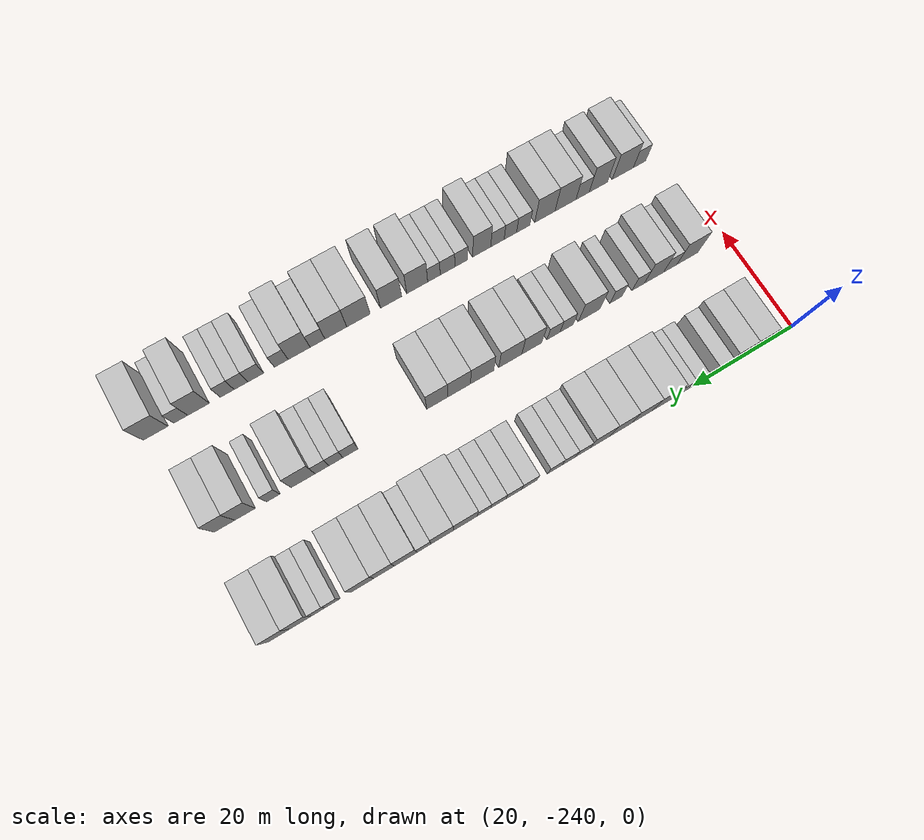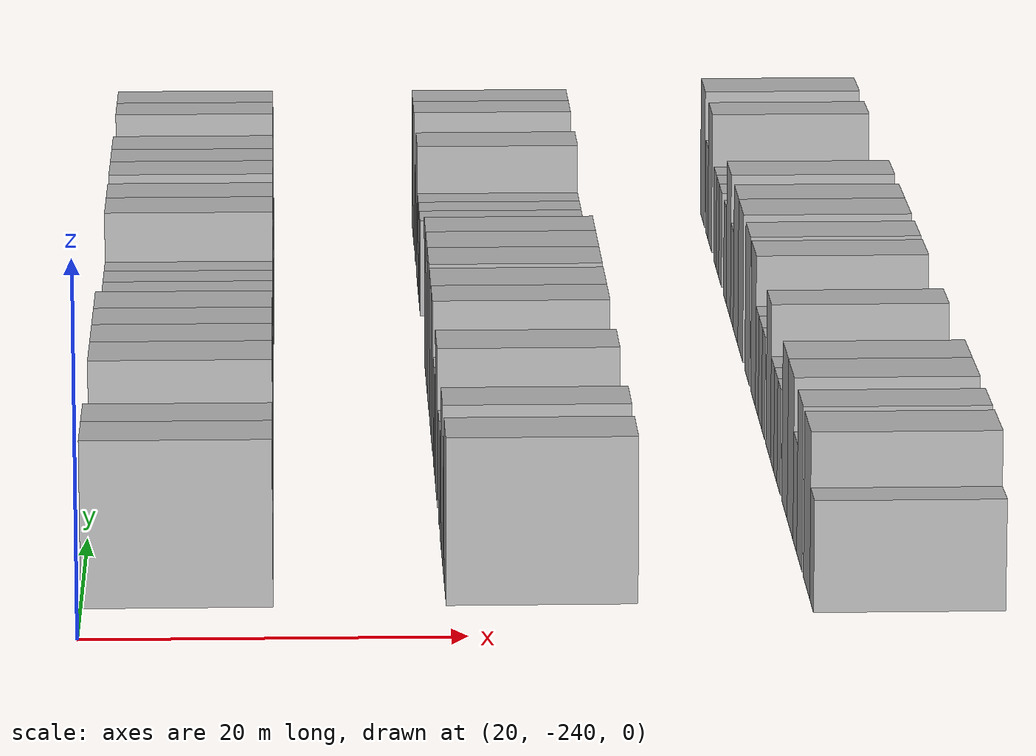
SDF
<sdf version="1.6">
 <world name="default">
  <model name="building_1">
   <static>1</static>
   <pose>25.0000 -231.9561 0 0.000000 0.000000 0.000000</pose>
   <link name="link">
    <pose>0 0 4.50 0 0 0</pose>
    <collision name="collision"><geometry><box><size>10.0000 4.0878 9.0000</size></box></geometry></collision>
    <visual name="visual">
     <cast_shadows>0</cast_shadows>
     <geometry><box><size>10.0000 4.0878 9.0000</size></box></geometry>
     <material>
      <script>
       <uri>model://HANNAS_wall/materials/scripts</uri>
       <uri>model://HANNAS_wall/materials/textures</uri>
       <name>vrc/HANNAS_wall</name>
      </script>
     </material>
    </visual>
   </link>
  </model>
  <model name="building_2">
   <static>1</static>
   <pose>25.0000 -227.9771 0 0.000000 0.000000 0.000000</pose>
   <link name="link">
    <pose>0 0 4.50 0 0 0</pose>
    <collision name="collision"><geometry><box><size>10.0000 3.8702 9.0000</size></box></geometry></collision>
    <visual name="visual">
     <cast_shadows>0</cast_shadows>
     <geometry><box><size>10.0000 3.8702 9.0000</size></box></geometry>
     <material>
      <script>
       <uri>model://HANNAS_wall/materials/scripts</uri>
       <uri>model://HANNAS_wall/materials/textures</uri>
       <name>vrc/HANNAS_wall</name>
      </script>
     </material>
    </visual>
   </link>
  </model>
  <model name="building_3">
   <static>1</static>
   <pose>25.0000 -224.6804 0 0.000000 0.000000 0.000000</pose>
   <link name="link">
    <pose>0 0 3.00 0 0 0</pose>
    <collision name="collision"><geometry><box><size>10.0000 2.7232 6.0000</size></box></geometry></collision>
    <visual name="visual">
     <cast_shadows>0</cast_shadows>
     <geometry><box><size>10.0000 2.7232 6.0000</size></box></geometry>
     <material>
      <script>
       <uri>model://HANNAS_wall/materials/scripts</uri>
       <uri>model://HANNAS_wall/materials/textures</uri>
       <name>vrc/HANNAS_wall</name>
      </script>
     </material>
    </visual>
   </link>
  </model>
  <model name="building_4">
   <static>1</static>
   <pose>25.0000 -220.0909 0 0.000000 0.000000 0.000000</pose>
   <link name="link">
    <pose>0 0 3.00 0 0 0</pose>
    <collision name="collision"><geometry><box><size>10.0000 2.4558 6.0000</size></box></geometry></collision>
    <visual name="visual">
     <cast_shadows>0</cast_shadows>
     <geometry><box><size>10.0000 2.4558 6.0000</size></box></geometry>
     <material>
      <script>
       <uri>model://HANNAS_wall/materials/scripts</uri>
       <uri>model://HANNAS_wall/materials/textures</uri>
       <name>vrc/HANNAS_wall</name>
      </script>
     </material>
    </visual>
   </link>
  </model>
  <model name="building_5">
   <static>1</static>
   <pose>25.0000 -217.5487 0 0.000000 0.000000 0.000000</pose>
   <link name="link">
    <pose>0 0 3.00 0 0 0</pose>
    <collision name="collision"><geometry><box><size>10.0000 2.6286 6.0000</size></box></geometry></collision>
    <visual name="visual">
     <cast_shadows>0</cast_shadows>
     <geometry><box><size>10.0000 2.6286 6.0000</size></box></geometry>
     <material>
      <script>
       <uri>model://HANNAS_wall/materials/scripts</uri>
       <uri>model://HANNAS_wall/materials/textures</uri>
       <name>vrc/HANNAS_wall</name>
      </script>
     </material>
    </visual>
   </link>
  </model>
  <model name="building_6">
   <static>1</static>
   <pose>25.0000 -214.0006 0 0.000000 0.000000 0.000000</pose>
   <link name="link">
    <pose>0 0 4.50 0 0 0</pose>
    <collision name="collision"><geometry><box><size>10.0000 4.4677 9.0000</size></box></geometry></collision>
    <visual name="visual">
     <cast_shadows>0</cast_shadows>
     <geometry><box><size>10.0000 4.4677 9.0000</size></box></geometry>
     <material>
      <script>
       <uri>model://HANNAS_wall/materials/scripts</uri>
       <uri>model://HANNAS_wall/materials/textures</uri>
       <name>vrc/HANNAS_wall</name>
      </script>
     </material>
    </visual>
   </link>
  </model>
  <model name="building_7">
   <static>1</static>
   <pose>25.0000 -209.6781 0 0.000000 0.000000 0.000000</pose>
   <link name="link">
    <pose>0 0 4.50 0 0 0</pose>
    <collision name="collision"><geometry><box><size>10.0000 4.1772 9.0000</size></box></geometry></collision>
    <visual name="visual">
     <cast_shadows>0</cast_shadows>
     <geometry><box><size>10.0000 4.1772 9.0000</size></box></geometry>
     <material>
      <script>
       <uri>model://HANNAS_wall/materials/scripts</uri>
       <uri>model://HANNAS_wall/materials/textures</uri>
       <name>vrc/HANNAS_wall</name>
      </script>
     </material>
    </visual>
   </link>
  </model>
  <model name="building_8">
   <static>1</static>
   <pose>25.0000 -205.5924 0 0.000000 0.000000 0.000000</pose>
   <link name="link">
    <pose>0 0 4.50 0 0 0</pose>
    <collision name="collision"><geometry><box><size>10.0000 3.9943 9.0000</size></box></geometry></collision>
    <visual name="visual">
     <cast_shadows>0</cast_shadows>
     <geometry><box><size>10.0000 3.9943 9.0000</size></box></geometry>
     <material>
      <script>
       <uri>model://HANNAS_wall/materials/scripts</uri>
       <uri>model://HANNAS_wall/materials/textures</uri>
       <name>vrc/HANNAS_wall</name>
      </script>
     </material>
    </visual>
   </link>
  </model>
  <model name="building_9">
   <static>1</static>
   <pose>25.0000 -201.5379 0 0.000000 0.000000 0.000000</pose>
   <link name="link">
    <pose>0 0 4.50 0 0 0</pose>
    <collision name="collision"><geometry><box><size>10.0000 4.1145 9.0000</size></box></geometry></collision>
    <visual name="visual">
     <cast_shadows>0</cast_shadows>
     <geometry><box><size>10.0000 4.1145 9.0000</size></box></geometry>
     <material>
      <script>
       <uri>model://HANNAS_wall/materials/scripts</uri>
       <uri>model://HANNAS_wall/materials/textures</uri>
       <name>vrc/HANNAS_wall</name>
      </script>
     </material>
    </visual>
   </link>
  </model>
  <model name="building_10">
   <static>1</static>
   <pose>25.0000 -198.1714 0 0.000000 0.000000 0.000000</pose>
   <link name="link">
    <pose>0 0 3.00 0 0 0</pose>
    <collision name="collision"><geometry><box><size>10.0000 2.6185 6.0000</size></box></geometry></collision>
    <visual name="visual">
     <cast_shadows>0</cast_shadows>
     <geometry><box><size>10.0000 2.6185 6.0000</size></box></geometry>
     <material>
      <script>
       <uri>model://HANNAS_wall/materials/scripts</uri>
       <uri>model://HANNAS_wall/materials/textures</uri>
       <name>vrc/HANNAS_wall</name>
      </script>
     </material>
    </visual>
   </link>
  </model>
  <model name="building_11">
   <static>1</static>
   <pose>25.0000 -195.5604 0 0.000000 0.000000 0.000000</pose>
   <link name="link">
    <pose>0 0 3.00 0 0 0</pose>
    <collision name="collision"><geometry><box><size>10.0000 2.6036 6.0000</size></box></geometry></collision>
    <visual name="visual">
     <cast_shadows>0</cast_shadows>
     <geometry><box><size>10.0000 2.6036 6.0000</size></box></geometry>
     <material>
      <script>
       <uri>model://HANNAS_wall/materials/scripts</uri>
       <uri>model://HANNAS_wall/materials/textures</uri>
       <name>vrc/HANNAS_wall</name>
      </script>
     </material>
    </visual>
   </link>
  </model>
  <model name="building_12">
   <static>1</static>
   <pose>25.0000 -192.9126 0 0.000000 0.000000 0.000000</pose>
   <link name="link">
    <pose>0 0 3.00 0 0 0</pose>
    <collision name="collision"><geometry><box><size>10.0000 2.6920 6.0000</size></box></geometry></collision>
    <visual name="visual">
     <cast_shadows>0</cast_shadows>
     <geometry><box><size>10.0000 2.6920 6.0000</size></box></geometry>
     <material>
      <script>
       <uri>model://HANNAS_wall/materials/scripts</uri>
       <uri>model://HANNAS_wall/materials/textures</uri>
       <name>vrc/HANNAS_wall</name>
      </script>
     </material>
    </visual>
   </link>
  </model>
  <model name="building_13">
   <static>1</static>
   <pose>25.0000 -188.1085 0 0.000000 0.000000 0.000000</pose>
   <link name="link">
    <pose>0 0 3.00 0 0 0</pose>
    <collision name="collision"><geometry><box><size>10.0000 2.9162 6.0000</size></box></geometry></collision>
    <visual name="visual">
     <cast_shadows>0</cast_shadows>
     <geometry><box><size>10.0000 2.9162 6.0000</size></box></geometry>
     <material>
      <script>
       <uri>model://HANNAS_wall/materials/scripts</uri>
       <uri>model://HANNAS_wall/materials/textures</uri>
       <name>vrc/HANNAS_wall</name>
      </script>
     </material>
    </visual>
   </link>
  </model>
  <model name="building_14">
   <static>1</static>
   <pose>25.0000 -185.1995 0 0.000000 0.000000 0.000000</pose>
   <link name="link">
    <pose>0 0 3.00 0 0 0</pose>
    <collision name="collision"><geometry><box><size>10.0000 2.9018 6.0000</size></box></geometry></collision>
    <visual name="visual">
     <cast_shadows>0</cast_shadows>
     <geometry><box><size>10.0000 2.9018 6.0000</size></box></geometry>
     <material>
      <script>
       <uri>model://HANNAS_wall/materials/scripts</uri>
       <uri>model://HANNAS_wall/materials/textures</uri>
       <name>vrc/HANNAS_wall</name>
      </script>
     </material>
    </visual>
   </link>
  </model>
  <model name="building_15">
   <static>1</static>
   <pose>25.0000 -182.3323 0 0.000000 0.000000 0.000000</pose>
   <link name="link">
    <pose>0 0 3.00 0 0 0</pose>
    <collision name="collision"><geometry><box><size>10.0000 2.8326 6.0000</size></box></geometry></collision>
    <visual name="visual">
     <cast_shadows>0</cast_shadows>
     <geometry><box><size>10.0000 2.8326 6.0000</size></box></geometry>
     <material>
      <script>
       <uri>model://HANNAS_wall/materials/scripts</uri>
       <uri>model://HANNAS_wall/materials/textures</uri>
       <name>vrc/HANNAS_wall</name>
      </script>
     </material>
    </visual>
   </link>
  </model>
  <model name="building_16">
   <static>1</static>
   <pose>25.0000 -179.6947 0 0.000000 0.000000 0.000000</pose>
   <link name="link">
    <pose>0 0 3.00 0 0 0</pose>
    <collision name="collision"><geometry><box><size>10.0000 2.4427 6.0000</size></box></geometry></collision>
    <visual name="visual">
     <cast_shadows>0</cast_shadows>
     <geometry><box><size>10.0000 2.4427 6.0000</size></box></geometry>
     <material>
      <script>
       <uri>model://HANNAS_wall/materials/scripts</uri>
       <uri>model://HANNAS_wall/materials/textures</uri>
       <name>vrc/HANNAS_wall</name>
      </script>
     </material>
    </visual>
   </link>
  </model>
  <model name="building_17">
   <static>1</static>
   <pose>25.0000 -176.2881 0 0.000000 0.000000 0.000000</pose>
   <link name="link">
    <pose>0 0 4.50 0 0 0</pose>
    <collision name="collision"><geometry><box><size>10.0000 4.3705 9.0000</size></box></geometry></collision>
    <visual name="visual">
     <cast_shadows>0</cast_shadows>
     <geometry><box><size>10.0000 4.3705 9.0000</size></box></geometry>
     <material>
      <script>
       <uri>model://HANNAS_wall/materials/scripts</uri>
       <uri>model://HANNAS_wall/materials/textures</uri>
       <name>vrc/HANNAS_wall</name>
      </script>
     </material>
    </visual>
   </link>
  </model>
  <model name="building_18">
   <static>1</static>
   <pose>25.0000 -172.0715 0 0.000000 0.000000 0.000000</pose>
   <link name="link">
    <pose>0 0 4.50 0 0 0</pose>
    <collision name="collision"><geometry><box><size>10.0000 4.0628 9.0000</size></box></geometry></collision>
    <visual name="visual">
     <cast_shadows>0</cast_shadows>
     <geometry><box><size>10.0000 4.0628 9.0000</size></box></geometry>
     <material>
      <script>
       <uri>model://HANNAS_wall/materials/scripts</uri>
       <uri>model://HANNAS_wall/materials/textures</uri>
       <name>vrc/HANNAS_wall</name>
      </script>
     </material>
    </visual>
   </link>
  </model>
  <model name="building_19">
   <static>1</static>
   <pose>25.0000 -168.7544 0 0.000000 0.000000 0.000000</pose>
   <link name="link">
    <pose>0 0 3.00 0 0 0</pose>
    <collision name="collision"><geometry><box><size>10.0000 2.5712 6.0000</size></box></geometry></collision>
    <visual name="visual">
     <cast_shadows>0</cast_shadows>
     <geometry><box><size>10.0000 2.5712 6.0000</size></box></geometry>
     <material>
      <script>
       <uri>model://HANNAS_wall/materials/scripts</uri>
       <uri>model://HANNAS_wall/materials/textures</uri>
       <name>vrc/HANNAS_wall</name>
      </script>
     </material>
    </visual>
   </link>
  </model>
  <model name="building_20">
   <static>1</static>
   <pose>25.0000 -165.4810 0 0.000000 0.000000 0.000000</pose>
   <link name="link">
    <pose>0 0 4.50 0 0 0</pose>
    <collision name="collision"><geometry><box><size>10.0000 3.9756 9.0000</size></box></geometry></collision>
    <visual name="visual">
     <cast_shadows>0</cast_shadows>
     <geometry><box><size>10.0000 3.9756 9.0000</size></box></geometry>
     <material>
      <script>
       <uri>model://HANNAS_wall/materials/scripts</uri>
       <uri>model://HANNAS_wall/materials/textures</uri>
       <name>vrc/HANNAS_wall</name>
      </script>
     </material>
    </visual>
   </link>
  </model>
  <model name="building_21">
   <static>1</static>
   <pose>25.0000 -161.6683 0 0.000000 0.000000 0.000000</pose>
   <link name="link">
    <pose>0 0 4.50 0 0 0</pose>
    <collision name="collision"><geometry><box><size>10.0000 3.6498 9.0000</size></box></geometry></collision>
    <visual name="visual">
     <cast_shadows>0</cast_shadows>
     <geometry><box><size>10.0000 3.6498 9.0000</size></box></geometry>
     <material>
      <script>
       <uri>model://HANNAS_wall/materials/scripts</uri>
       <uri>model://HANNAS_wall/materials/textures</uri>
       <name>vrc/HANNAS_wall</name>
      </script>
     </material>
    </visual>
   </link>
  </model>
  <model name="building_22">
   <static>1</static>
   <pose>25.0000 -157.8268 0 0.000000 0.000000 0.000000</pose>
   <link name="link">
    <pose>0 0 4.50 0 0 0</pose>
    <collision name="collision"><geometry><box><size>10.0000 4.0331 9.0000</size></box></geometry></collision>
    <visual name="visual">
     <cast_shadows>0</cast_shadows>
     <geometry><box><size>10.0000 4.0331 9.0000</size></box></geometry>
     <material>
      <script>
       <uri>model://HANNAS_wall/materials/scripts</uri>
       <uri>model://HANNAS_wall/materials/textures</uri>
       <name>vrc/HANNAS_wall</name>
      </script>
     </material>
    </visual>
   </link>
  </model>
  <model name="building_23">
   <static>1</static>
   <pose>25.0000 -152.5795 0 0.000000 0.000000 0.000000</pose>
   <link name="link">
    <pose>0 0 3.00 0 0 0</pose>
    <collision name="collision"><geometry><box><size>10.0000 2.4616 6.0000</size></box></geometry></collision>
    <visual name="visual">
     <cast_shadows>0</cast_shadows>
     <geometry><box><size>10.0000 2.4616 6.0000</size></box></geometry>
     <material>
      <script>
       <uri>model://HANNAS_wall/materials/scripts</uri>
       <uri>model://HANNAS_wall/materials/textures</uri>
       <name>vrc/HANNAS_wall</name>
      </script>
     </material>
    </visual>
   </link>
  </model>
  <model name="building_24">
   <static>1</static>
   <pose>25.0000 -150.1322 0 0.000000 0.000000 0.000000</pose>
   <link name="link">
    <pose>0 0 3.00 0 0 0</pose>
    <collision name="collision"><geometry><box><size>10.0000 2.4331 6.0000</size></box></geometry></collision>
    <visual name="visual">
     <cast_shadows>0</cast_shadows>
     <geometry><box><size>10.0000 2.4331 6.0000</size></box></geometry>
     <material>
      <script>
       <uri>model://HANNAS_wall/materials/scripts</uri>
       <uri>model://HANNAS_wall/materials/textures</uri>
       <name>vrc/HANNAS_wall</name>
      </script>
     </material>
    </visual>
   </link>
  </model>
  <model name="building_25">
   <static>1</static>
   <pose>25.0000 -147.0416 0 0.000000 0.000000 0.000000</pose>
   <link name="link">
    <pose>0 0 4.50 0 0 0</pose>
    <collision name="collision"><geometry><box><size>10.0000 3.7482 9.0000</size></box></geometry></collision>
    <visual name="visual">
     <cast_shadows>0</cast_shadows>
     <geometry><box><size>10.0000 3.7482 9.0000</size></box></geometry>
     <material>
      <script>
       <uri>model://HANNAS_wall/materials/scripts</uri>
       <uri>model://HANNAS_wall/materials/textures</uri>
       <name>vrc/HANNAS_wall</name>
      </script>
     </material>
    </visual>
   </link>
  </model>
  <model name="building_26">
   <static>1</static>
   <pose>25.0000 -143.2613 0 0.000000 0.000000 0.000000</pose>
   <link name="link">
    <pose>0 0 4.50 0 0 0</pose>
    <collision name="collision"><geometry><box><size>10.0000 3.8124 9.0000</size></box></geometry></collision>
    <visual name="visual">
     <cast_shadows>0</cast_shadows>
     <geometry><box><size>10.0000 3.8124 9.0000</size></box></geometry>
     <material>
      <script>
       <uri>model://HANNAS_wall/materials/scripts</uri>
       <uri>model://HANNAS_wall/materials/textures</uri>
       <name>vrc/HANNAS_wall</name>
      </script>
     </material>
    </visual>
   </link>
  </model>
  <model name="building_125">
   <static>1</static>
   <pose>44.0000 -231.8145 0 0.000000 0.000000 0.000000</pose>
   <link name="link">
    <pose>0 0 4.50 0 0 0</pose>
    <collision name="collision"><geometry><box><size>10.0000 4.3710 9.0000</size></box></geometry></collision>
    <visual name="visual">
     <cast_shadows>0</cast_shadows>
     <geometry><box><size>10.0000 4.3710 9.0000</size></box></geometry>
     <material>
      <script>
       <uri>model://HANNAS_wall/materials/scripts</uri>
       <uri>model://HANNAS_wall/materials/textures</uri>
       <name>vrc/HANNAS_wall</name>
      </script>
     </material>
    </visual>
   </link>
  </model>
  <model name="building_126">
   <static>1</static>
   <pose>44.0000 -228.2706 0 0.000000 0.000000 0.000000</pose>
   <link name="link">
    <pose>0 0 3.00 0 0 0</pose>
    <collision name="collision"><geometry><box><size>10.0000 2.7167 6.0000</size></box></geometry></collision>
    <visual name="visual">
     <cast_shadows>0</cast_shadows>
     <geometry><box><size>10.0000 2.7167 6.0000</size></box></geometry>
     <material>
      <script>
       <uri>model://HANNAS_wall/materials/scripts</uri>
       <uri>model://HANNAS_wall/materials/textures</uri>
       <name>vrc/HANNAS_wall</name>
      </script>
     </material>
    </visual>
   </link>
  </model>
  <model name="building_127">
   <static>1</static>
   <pose>44.0000 -224.9423 0 0.000000 0.000000 0.000000</pose>
   <link name="link">
    <pose>0 0 4.50 0 0 0</pose>
    <collision name="collision"><geometry><box><size>10.0000 3.9399 9.0000</size></box></geometry></collision>
    <visual name="visual">
     <cast_shadows>0</cast_shadows>
     <geometry><box><size>10.0000 3.9399 9.0000</size></box></geometry>
     <material>
      <script>
       <uri>model://HANNAS_wall/materials/scripts</uri>
       <uri>model://HANNAS_wall/materials/textures</uri>
       <name>vrc/HANNAS_wall</name>
      </script>
     </material>
    </visual>
   </link>
  </model>
  <model name="building_128">
   <static>1</static>
   <pose>44.0000 -221.7104 0 0.000000 0.000000 0.000000</pose>
   <link name="link">
    <pose>0 0 3.00 0 0 0</pose>
    <collision name="collision"><geometry><box><size>10.0000 2.5241 6.0000</size></box></geometry></collision>
    <visual name="visual">
     <cast_shadows>0</cast_shadows>
     <geometry><box><size>10.0000 2.5241 6.0000</size></box></geometry>
     <material>
      <script>
       <uri>model://HANNAS_wall/materials/scripts</uri>
       <uri>model://HANNAS_wall/materials/textures</uri>
       <name>vrc/HANNAS_wall</name>
      </script>
     </material>
    </visual>
   </link>
  </model>
  <model name="building_129">
   <static>1</static>
   <pose>44.0000 -217.2175 0 0.000000 0.000000 0.000000</pose>
   <link name="link">
    <pose>0 0 3.00 0 0 0</pose>
    <collision name="collision"><geometry><box><size>10.0000 2.4616 6.0000</size></box></geometry></collision>
    <visual name="visual">
     <cast_shadows>0</cast_shadows>
     <geometry><box><size>10.0000 2.4616 6.0000</size></box></geometry>
     <material>
      <script>
       <uri>model://HANNAS_wall/materials/scripts</uri>
       <uri>model://HANNAS_wall/materials/textures</uri>
       <name>vrc/HANNAS_wall</name>
      </script>
     </material>
    </visual>
   </link>
  </model>
  <model name="building_130">
   <static>1</static>
   <pose>44.0000 -211.8104 0 0.000000 0.000000 0.000000</pose>
   <link name="link">
    <pose>0 0 4.50 0 0 0</pose>
    <collision name="collision"><geometry><box><size>10.0000 4.3525 9.0000</size></box></geometry></collision>
    <visual name="visual">
     <cast_shadows>0</cast_shadows>
     <geometry><box><size>10.0000 4.3525 9.0000</size></box></geometry>
     <material>
      <script>
       <uri>model://HANNAS_wall/materials/scripts</uri>
       <uri>model://HANNAS_wall/materials/textures</uri>
       <name>vrc/HANNAS_wall</name>
      </script>
     </material>
    </visual>
   </link>
  </model>
  <model name="building_131">
   <static>1</static>
   <pose>44.0000 -207.3325 0 0.000000 0.000000 0.000000</pose>
   <link name="link">
    <pose>0 0 3.00 0 0 0</pose>
    <collision name="collision"><geometry><box><size>10.0000 2.6033 6.0000</size></box></geometry></collision>
    <visual name="visual">
     <cast_shadows>0</cast_shadows>
     <geometry><box><size>10.0000 2.6033 6.0000</size></box></geometry>
     <material>
      <script>
       <uri>model://HANNAS_wall/materials/scripts</uri>
       <uri>model://HANNAS_wall/materials/textures</uri>
       <name>vrc/HANNAS_wall</name>
      </script>
     </material>
    </visual>
   </link>
  </model>
  <model name="building_132">
   <static>1</static>
   <pose>44.0000 -204.7227 0 0.000000 0.000000 0.000000</pose>
   <link name="link">
    <pose>0 0 3.00 0 0 0</pose>
    <collision name="collision"><geometry><box><size>10.0000 2.6163 6.0000</size></box></geometry></collision>
    <visual name="visual">
     <cast_shadows>0</cast_shadows>
     <geometry><box><size>10.0000 2.6163 6.0000</size></box></geometry>
     <material>
      <script>
       <uri>model://HANNAS_wall/materials/scripts</uri>
       <uri>model://HANNAS_wall/materials/textures</uri>
       <name>vrc/HANNAS_wall</name>
      </script>
     </material>
    </visual>
   </link>
  </model>
  <model name="building_133">
   <static>1</static>
   <pose>44.0000 -200.4511 0 0.000000 0.000000 0.000000</pose>
   <link name="link">
    <pose>0 0 4.50 0 0 0</pose>
    <collision name="collision"><geometry><box><size>10.0000 3.9269 9.0000</size></box></geometry></collision>
    <visual name="visual">
     <cast_shadows>0</cast_shadows>
     <geometry><box><size>10.0000 3.9269 9.0000</size></box></geometry>
     <material>
      <script>
       <uri>model://HANNAS_wall/materials/scripts</uri>
       <uri>model://HANNAS_wall/materials/textures</uri>
       <name>vrc/HANNAS_wall</name>
      </script>
     </material>
    </visual>
   </link>
  </model>
  <model name="building_134">
   <static>1</static>
   <pose>44.0000 -196.2505 0 0.000000 0.000000 0.000000</pose>
   <link name="link">
    <pose>0 0 4.50 0 0 0</pose>
    <collision name="collision"><geometry><box><size>10.0000 4.4743 9.0000</size></box></geometry></collision>
    <visual name="visual">
     <cast_shadows>0</cast_shadows>
     <geometry><box><size>10.0000 4.4743 9.0000</size></box></geometry>
     <material>
      <script>
       <uri>model://HANNAS_wall/materials/scripts</uri>
       <uri>model://HANNAS_wall/materials/textures</uri>
       <name>vrc/HANNAS_wall</name>
      </script>
     </material>
    </visual>
   </link>
  </model>
  <model name="building_135">
   <static>1</static>
   <pose>44.0000 -190.7830 0 0.000000 0.000000 0.000000</pose>
   <link name="link">
    <pose>0 0 4.50 0 0 0</pose>
    <collision name="collision"><geometry><box><size>10.0000 4.4607 9.0000</size></box></geometry></collision>
    <visual name="visual">
     <cast_shadows>0</cast_shadows>
     <geometry><box><size>10.0000 4.4607 9.0000</size></box></geometry>
     <material>
      <script>
       <uri>model://HANNAS_wall/materials/scripts</uri>
       <uri>model://HANNAS_wall/materials/textures</uri>
       <name>vrc/HANNAS_wall</name>
      </script>
     </material>
    </visual>
   </link>
  </model>
  <model name="building_136">
   <static>1</static>
   <pose>44.0000 -186.4019 0 0.000000 0.000000 0.000000</pose>
   <link name="link">
    <pose>0 0 4.50 0 0 0</pose>
    <collision name="collision"><geometry><box><size>10.0000 4.3014 9.0000</size></box></geometry></collision>
    <visual name="visual">
     <cast_shadows>0</cast_shadows>
     <geometry><box><size>10.0000 4.3014 9.0000</size></box></geometry>
     <material>
      <script>
       <uri>model://HANNAS_wall/materials/scripts</uri>
       <uri>model://HANNAS_wall/materials/textures</uri>
       <name>vrc/HANNAS_wall</name>
      </script>
     </material>
    </visual>
   </link>
  </model>
  <model name="building_137">
   <static>1</static>
   <pose>44.0000 -182.2504 0 0.000000 0.000000 0.000000</pose>
   <link name="link">
    <pose>0 0 4.50 0 0 0</pose>
    <collision name="collision"><geometry><box><size>10.0000 4.0015 9.0000</size></box></geometry></collision>
    <visual name="visual">
     <cast_shadows>0</cast_shadows>
     <geometry><box><size>10.0000 4.0015 9.0000</size></box></geometry>
     <material>
      <script>
       <uri>model://HANNAS_wall/materials/scripts</uri>
       <uri>model://HANNAS_wall/materials/textures</uri>
       <name>vrc/HANNAS_wall</name>
      </script>
     </material>
    </visual>
   </link>
  </model>
  <model name="building_138">
   <static>1</static>
   <pose>44.0000 -166.0498 0 0.000000 0.000000 0.000000</pose>
   <link name="link">
    <pose>0 0 3.00 0 0 0</pose>
    <collision name="collision"><geometry><box><size>10.0000 2.7999 6.0000</size></box></geometry></collision>
    <visual name="visual">
     <cast_shadows>0</cast_shadows>
     <geometry><box><size>10.0000 2.7999 6.0000</size></box></geometry>
     <material>
      <script>
       <uri>model://HANNAS_wall/materials/scripts</uri>
       <uri>model://HANNAS_wall/materials/textures</uri>
       <name>vrc/HANNAS_wall</name>
      </script>
     </material>
    </visual>
   </link>
  </model>
  <model name="building_139">
   <static>1</static>
   <pose>44.0000 -163.3562 0 0.000000 0.000000 0.000000</pose>
   <link name="link">
    <pose>0 0 3.00 0 0 0</pose>
    <collision name="collision"><geometry><box><size>10.0000 2.5873 6.0000</size></box></geometry></collision>
    <visual name="visual">
     <cast_shadows>0</cast_shadows>
     <geometry><box><size>10.0000 2.5873 6.0000</size></box></geometry>
     <material>
      <script>
       <uri>model://HANNAS_wall/materials/scripts</uri>
       <uri>model://HANNAS_wall/materials/textures</uri>
       <name>vrc/HANNAS_wall</name>
      </script>
     </material>
    </visual>
   </link>
  </model>
  <model name="building_140">
   <static>1</static>
   <pose>44.0000 -160.8073 0 0.000000 0.000000 0.000000</pose>
   <link name="link">
    <pose>0 0 3.00 0 0 0</pose>
    <collision name="collision"><geometry><box><size>10.0000 2.5106 6.0000</size></box></geometry></collision>
    <visual name="visual">
     <cast_shadows>0</cast_shadows>
     <geometry><box><size>10.0000 2.5106 6.0000</size></box></geometry>
     <material>
      <script>
       <uri>model://HANNAS_wall/materials/scripts</uri>
       <uri>model://HANNAS_wall/materials/textures</uri>
       <name>vrc/HANNAS_wall</name>
      </script>
     </material>
    </visual>
   </link>
  </model>
  <model name="building_141">
   <static>1</static>
   <pose>44.0000 -157.4000 0 0.000000 0.000000 0.000000</pose>
   <link name="link">
    <pose>0 0 4.50 0 0 0</pose>
    <collision name="collision"><geometry><box><size>10.0000 4.3040 9.0000</size></box></geometry></collision>
    <visual name="visual">
     <cast_shadows>0</cast_shadows>
     <geometry><box><size>10.0000 4.3040 9.0000</size></box></geometry>
     <material>
      <script>
       <uri>model://HANNAS_wall/materials/scripts</uri>
       <uri>model://HANNAS_wall/materials/textures</uri>
       <name>vrc/HANNAS_wall</name>
      </script>
     </material>
    </visual>
   </link>
  </model>
  <model name="building_142">
   <static>1</static>
   <pose>44.0000 -152.0445 0 0.000000 0.000000 0.000000</pose>
   <link name="link">
    <pose>0 0 3.00 0 0 0</pose>
    <collision name="collision"><geometry><box><size>10.0000 2.4071 6.0000</size></box></geometry></collision>
    <visual name="visual">
     <cast_shadows>0</cast_shadows>
     <geometry><box><size>10.0000 2.4071 6.0000</size></box></geometry>
     <material>
      <script>
       <uri>model://HANNAS_wall/materials/scripts</uri>
       <uri>model://HANNAS_wall/materials/textures</uri>
       <name>vrc/HANNAS_wall</name>
      </script>
     </material>
    </visual>
   </link>
  </model>
  <model name="building_143">
   <static>1</static>
   <pose>44.0000 -147.0224 0 0.000000 0.000000 0.000000</pose>
   <link name="link">
    <pose>0 0 4.50 0 0 0</pose>
    <collision name="collision"><geometry><box><size>10.0000 3.6371 9.0000</size></box></geometry></collision>
    <visual name="visual">
     <cast_shadows>0</cast_shadows>
     <geometry><box><size>10.0000 3.6371 9.0000</size></box></geometry>
     <material>
      <script>
       <uri>model://HANNAS_wall/materials/scripts</uri>
       <uri>model://HANNAS_wall/materials/textures</uri>
       <name>vrc/HANNAS_wall</name>
      </script>
     </material>
    </visual>
   </link>
  </model>
  <model name="building_144">
   <static>1</static>
   <pose>44.0000 -143.3822 0 0.000000 0.000000 0.000000</pose>
   <link name="link">
    <pose>0 0 4.50 0 0 0</pose>
    <collision name="collision"><geometry><box><size>10.0000 3.6432 9.0000</size></box></geometry></collision>
    <visual name="visual">
     <cast_shadows>0</cast_shadows>
     <geometry><box><size>10.0000 3.6432 9.0000</size></box></geometry>
     <material>
      <script>
       <uri>model://HANNAS_wall/materials/scripts</uri>
       <uri>model://HANNAS_wall/materials/textures</uri>
       <name>vrc/HANNAS_wall</name>
      </script>
     </material>
    </visual>
   </link>
  </model>
  <model name="building_244">
   <static>1</static>
   <pose>63.0000 -234.6944 0 0.000000 0.000000 0.000000</pose>
   <link name="link">
    <pose>0 0 3.00 0 0 0</pose>
    <collision name="collision"><geometry><box><size>10.0000 2.6112 6.0000</size></box></geometry></collision>
    <visual name="visual">
     <cast_shadows>0</cast_shadows>
     <geometry><box><size>10.0000 2.6112 6.0000</size></box></geometry>
     <material>
      <script>
       <uri>model://HANNAS_wall/materials/scripts</uri>
       <uri>model://HANNAS_wall/materials/textures</uri>
       <name>vrc/HANNAS_wall</name>
      </script>
     </material>
    </visual>
   </link>
  </model>
  <model name="building_245">
   <static>1</static>
   <pose>63.0000 -231.1618 0 0.000000 0.000000 0.000000</pose>
   <link name="link">
    <pose>0 0 4.50 0 0 0</pose>
    <collision name="collision"><geometry><box><size>10.0000 4.4539 9.0000</size></box></geometry></collision>
    <visual name="visual">
     <cast_shadows>0</cast_shadows>
     <geometry><box><size>10.0000 4.4539 9.0000</size></box></geometry>
     <material>
      <script>
       <uri>model://HANNAS_wall/materials/scripts</uri>
       <uri>model://HANNAS_wall/materials/textures</uri>
       <name>vrc/HANNAS_wall</name>
      </script>
     </material>
    </visual>
   </link>
  </model>
  <model name="building_246">
   <static>1</static>
   <pose>63.0000 -226.0421 0 0.000000 0.000000 0.000000</pose>
   <link name="link">
    <pose>0 0 4.50 0 0 0</pose>
    <collision name="collision"><geometry><box><size>10.0000 3.7856 9.0000</size></box></geometry></collision>
    <visual name="visual">
     <cast_shadows>0</cast_shadows>
     <geometry><box><size>10.0000 3.7856 9.0000</size></box></geometry>
     <material>
      <script>
       <uri>model://HANNAS_wall/materials/scripts</uri>
       <uri>model://HANNAS_wall/materials/textures</uri>
       <name>vrc/HANNAS_wall</name>
      </script>
     </material>
    </visual>
   </link>
  </model>
  <model name="building_247">
   <static>1</static>
   <pose>63.0000 -222.7605 0 0.000000 0.000000 0.000000</pose>
   <link name="link">
    <pose>0 0 3.00 0 0 0</pose>
    <collision name="collision"><geometry><box><size>10.0000 2.7776 6.0000</size></box></geometry></collision>
    <visual name="visual">
     <cast_shadows>0</cast_shadows>
     <geometry><box><size>10.0000 2.7776 6.0000</size></box></geometry>
     <material>
      <script>
       <uri>model://HANNAS_wall/materials/scripts</uri>
       <uri>model://HANNAS_wall/materials/textures</uri>
       <name>vrc/HANNAS_wall</name>
      </script>
     </material>
    </visual>
   </link>
  </model>
  <model name="building_248">
   <static>1</static>
   <pose>63.0000 -219.2134 0 0.000000 0.000000 0.000000</pose>
   <link name="link">
    <pose>0 0 4.50 0 0 0</pose>
    <collision name="collision"><geometry><box><size>10.0000 4.3166 9.0000</size></box></geometry></collision>
    <visual name="visual">
     <cast_shadows>0</cast_shadows>
     <geometry><box><size>10.0000 4.3166 9.0000</size></box></geometry>
     <material>
      <script>
       <uri>model://HANNAS_wall/materials/scripts</uri>
       <uri>model://HANNAS_wall/materials/textures</uri>
       <name>vrc/HANNAS_wall</name>
      </script>
     </material>
    </visual>
   </link>
  </model>
  <model name="building_249">
   <static>1</static>
   <pose>63.0000 -214.9714 0 0.000000 0.000000 0.000000</pose>
   <link name="link">
    <pose>0 0 4.50 0 0 0</pose>
    <collision name="collision"><geometry><box><size>10.0000 4.1673 9.0000</size></box></geometry></collision>
    <visual name="visual">
     <cast_shadows>0</cast_shadows>
     <geometry><box><size>10.0000 4.1673 9.0000</size></box></geometry>
     <material>
      <script>
       <uri>model://HANNAS_wall/materials/scripts</uri>
       <uri>model://HANNAS_wall/materials/textures</uri>
       <name>vrc/HANNAS_wall</name>
      </script>
     </material>
    </visual>
   </link>
  </model>
  <model name="building_250">
   <static>1</static>
   <pose>63.0000 -210.5334 0 0.000000 0.000000 0.000000</pose>
   <link name="link">
    <pose>0 0 3.00 0 0 0</pose>
    <collision name="collision"><geometry><box><size>10.0000 2.7087 6.0000</size></box></geometry></collision>
    <visual name="visual">
     <cast_shadows>0</cast_shadows>
     <geometry><box><size>10.0000 2.7087 6.0000</size></box></geometry>
     <material>
      <script>
       <uri>model://HANNAS_wall/materials/scripts</uri>
       <uri>model://HANNAS_wall/materials/textures</uri>
       <name>vrc/HANNAS_wall</name>
      </script>
     </material>
    </visual>
   </link>
  </model>
  <model name="building_251">
   <static>1</static>
   <pose>63.0000 -207.9214 0 0.000000 0.000000 0.000000</pose>
   <link name="link">
    <pose>0 0 3.00 0 0 0</pose>
    <collision name="collision"><geometry><box><size>10.0000 2.5152 6.0000</size></box></geometry></collision>
    <visual name="visual">
     <cast_shadows>0</cast_shadows>
     <geometry><box><size>10.0000 2.5152 6.0000</size></box></geometry>
     <material>
      <script>
       <uri>model://HANNAS_wall/materials/scripts</uri>
       <uri>model://HANNAS_wall/materials/textures</uri>
       <name>vrc/HANNAS_wall</name>
      </script>
     </material>
    </visual>
   </link>
  </model>
  <model name="building_252">
   <static>1</static>
   <pose>63.0000 -205.3107 0 0.000000 0.000000 0.000000</pose>
   <link name="link">
    <pose>0 0 3.00 0 0 0</pose>
    <collision name="collision"><geometry><box><size>10.0000 2.7062 6.0000</size></box></geometry></collision>
    <visual name="visual">
     <cast_shadows>0</cast_shadows>
     <geometry><box><size>10.0000 2.7062 6.0000</size></box></geometry>
     <material>
      <script>
       <uri>model://HANNAS_wall/materials/scripts</uri>
       <uri>model://HANNAS_wall/materials/textures</uri>
       <name>vrc/HANNAS_wall</name>
      </script>
     </material>
    </visual>
   </link>
  </model>
  <model name="building_253">
   <static>1</static>
   <pose>63.0000 -202.1448 0 0.000000 0.000000 0.000000</pose>
   <link name="link">
    <pose>0 0 4.50 0 0 0</pose>
    <collision name="collision"><geometry><box><size>10.0000 3.6257 9.0000</size></box></geometry></collision>
    <visual name="visual">
     <cast_shadows>0</cast_shadows>
     <geometry><box><size>10.0000 3.6257 9.0000</size></box></geometry>
     <material>
      <script>
       <uri>model://HANNAS_wall/materials/scripts</uri>
       <uri>model://HANNAS_wall/materials/textures</uri>
       <name>vrc/HANNAS_wall</name>
      </script>
     </material>
    </visual>
   </link>
  </model>
  <model name="building_254">
   <static>1</static>
   <pose>63.0000 -198.0556 0 0.000000 0.000000 0.000000</pose>
   <link name="link">
    <pose>0 0 3.00 0 0 0</pose>
    <collision name="collision"><geometry><box><size>10.0000 2.5526 6.0000</size></box></geometry></collision>
    <visual name="visual">
     <cast_shadows>0</cast_shadows>
     <geometry><box><size>10.0000 2.5526 6.0000</size></box></geometry>
     <material>
      <script>
       <uri>model://HANNAS_wall/materials/scripts</uri>
       <uri>model://HANNAS_wall/materials/textures</uri>
       <name>vrc/HANNAS_wall</name>
      </script>
     </material>
    </visual>
   </link>
  </model>
  <model name="building_255">
   <static>1</static>
   <pose>63.0000 -195.3465 0 0.000000 0.000000 0.000000</pose>
   <link name="link">
    <pose>0 0 3.00 0 0 0</pose>
    <collision name="collision"><geometry><box><size>10.0000 2.8656 6.0000</size></box></geometry></collision>
    <visual name="visual">
     <cast_shadows>0</cast_shadows>
     <geometry><box><size>10.0000 2.8656 6.0000</size></box></geometry>
     <material>
      <script>
       <uri>model://HANNAS_wall/materials/scripts</uri>
       <uri>model://HANNAS_wall/materials/textures</uri>
       <name>vrc/HANNAS_wall</name>
      </script>
     </material>
    </visual>
   </link>
  </model>
  <model name="building_256">
   <static>1</static>
   <pose>63.0000 -192.6785 0 0.000000 0.000000 0.000000</pose>
   <link name="link">
    <pose>0 0 3.00 0 0 0</pose>
    <collision name="collision"><geometry><box><size>10.0000 2.4705 6.0000</size></box></geometry></collision>
    <visual name="visual">
     <cast_shadows>0</cast_shadows>
     <geometry><box><size>10.0000 2.4705 6.0000</size></box></geometry>
     <material>
      <script>
       <uri>model://HANNAS_wall/materials/scripts</uri>
       <uri>model://HANNAS_wall/materials/textures</uri>
       <name>vrc/HANNAS_wall</name>
      </script>
     </material>
    </visual>
   </link>
  </model>
  <model name="building_257">
   <static>1</static>
   <pose>63.0000 -189.4012 0 0.000000 0.000000 0.000000</pose>
   <link name="link">
    <pose>0 0 4.50 0 0 0</pose>
    <collision name="collision"><geometry><box><size>10.0000 4.0841 9.0000</size></box></geometry></collision>
    <visual name="visual">
     <cast_shadows>0</cast_shadows>
     <geometry><box><size>10.0000 4.0841 9.0000</size></box></geometry>
     <material>
      <script>
       <uri>model://HANNAS_wall/materials/scripts</uri>
       <uri>model://HANNAS_wall/materials/textures</uri>
       <name>vrc/HANNAS_wall</name>
      </script>
     </material>
    </visual>
   </link>
  </model>
  <model name="building_258">
   <static>1</static>
   <pose>63.0000 -184.3124 0 0.000000 0.000000 0.000000</pose>
   <link name="link">
    <pose>0 0 4.50 0 0 0</pose>
    <collision name="collision"><geometry><box><size>10.0000 4.0937 9.0000</size></box></geometry></collision>
    <visual name="visual">
     <cast_shadows>0</cast_shadows>
     <geometry><box><size>10.0000 4.0937 9.0000</size></box></geometry>
     <material>
      <script>
       <uri>model://HANNAS_wall/materials/scripts</uri>
       <uri>model://HANNAS_wall/materials/textures</uri>
       <name>vrc/HANNAS_wall</name>
      </script>
     </material>
    </visual>
   </link>
  </model>
  <model name="building_259">
   <static>1</static>
   <pose>63.0000 -178.0208 0 0.000000 0.000000 0.000000</pose>
   <link name="link">
    <pose>0 0 4.50 0 0 0</pose>
    <collision name="collision"><geometry><box><size>10.0000 4.4895 9.0000</size></box></geometry></collision>
    <visual name="visual">
     <cast_shadows>0</cast_shadows>
     <geometry><box><size>10.0000 4.4895 9.0000</size></box></geometry>
     <material>
      <script>
       <uri>model://HANNAS_wall/materials/scripts</uri>
       <uri>model://HANNAS_wall/materials/textures</uri>
       <name>vrc/HANNAS_wall</name>
      </script>
     </material>
    </visual>
   </link>
  </model>
  <model name="building_260">
   <static>1</static>
   <pose>63.0000 -173.6961 0 0.000000 0.000000 0.000000</pose>
   <link name="link">
    <pose>0 0 4.50 0 0 0</pose>
    <collision name="collision"><geometry><box><size>10.0000 4.1599 9.0000</size></box></geometry></collision>
    <visual name="visual">
     <cast_shadows>0</cast_shadows>
     <geometry><box><size>10.0000 4.1599 9.0000</size></box></geometry>
     <material>
      <script>
       <uri>model://HANNAS_wall/materials/scripts</uri>
       <uri>model://HANNAS_wall/materials/textures</uri>
       <name>vrc/HANNAS_wall</name>
      </script>
     </material>
    </visual>
   </link>
  </model>
  <model name="building_261">
   <static>1</static>
   <pose>63.0000 -170.2111 0 0.000000 0.000000 0.000000</pose>
   <link name="link">
    <pose>0 0 3.00 0 0 0</pose>
    <collision name="collision"><geometry><box><size>10.0000 2.8101 6.0000</size></box></geometry></collision>
    <visual name="visual">
     <cast_shadows>0</cast_shadows>
     <geometry><box><size>10.0000 2.8101 6.0000</size></box></geometry>
     <material>
      <script>
       <uri>model://HANNAS_wall/materials/scripts</uri>
       <uri>model://HANNAS_wall/materials/textures</uri>
       <name>vrc/HANNAS_wall</name>
      </script>
     </material>
    </visual>
   </link>
  </model>
  <model name="building_262">
   <static>1</static>
   <pose>63.0000 -166.7568 0 0.000000 0.000000 0.000000</pose>
   <link name="link">
    <pose>0 0 4.50 0 0 0</pose>
    <collision name="collision"><geometry><box><size>10.0000 4.0984 9.0000</size></box></geometry></collision>
    <visual name="visual">
     <cast_shadows>0</cast_shadows>
     <geometry><box><size>10.0000 4.0984 9.0000</size></box></geometry>
     <material>
      <script>
       <uri>model://HANNAS_wall/materials/scripts</uri>
       <uri>model://HANNAS_wall/materials/textures</uri>
       <name>vrc/HANNAS_wall</name>
      </script>
     </material>
    </visual>
   </link>
  </model>
  <model name="building_263">
   <static>1</static>
   <pose>63.0000 -163.4153 0 0.000000 0.000000 0.000000</pose>
   <link name="link">
    <pose>0 0 3.00 0 0 0</pose>
    <collision name="collision"><geometry><box><size>10.0000 2.5846 6.0000</size></box></geometry></collision>
    <visual name="visual">
     <cast_shadows>0</cast_shadows>
     <geometry><box><size>10.0000 2.5846 6.0000</size></box></geometry>
     <material>
      <script>
       <uri>model://HANNAS_wall/materials/scripts</uri>
       <uri>model://HANNAS_wall/materials/textures</uri>
       <name>vrc/HANNAS_wall</name>
      </script>
     </material>
    </visual>
   </link>
  </model>
  <model name="building_264">
   <static>1</static>
   <pose>63.0000 -158.6586 0 0.000000 0.000000 0.000000</pose>
   <link name="link">
    <pose>0 0 3.00 0 0 0</pose>
    <collision name="collision"><geometry><box><size>10.0000 2.9287 6.0000</size></box></geometry></collision>
    <visual name="visual">
     <cast_shadows>0</cast_shadows>
     <geometry><box><size>10.0000 2.9287 6.0000</size></box></geometry>
     <material>
      <script>
       <uri>model://HANNAS_wall/materials/scripts</uri>
       <uri>model://HANNAS_wall/materials/textures</uri>
       <name>vrc/HANNAS_wall</name>
      </script>
     </material>
    </visual>
   </link>
  </model>
  <model name="building_265">
   <static>1</static>
   <pose>63.0000 -155.9279 0 0.000000 0.000000 0.000000</pose>
   <link name="link">
    <pose>0 0 3.00 0 0 0</pose>
    <collision name="collision"><geometry><box><size>10.0000 2.5327 6.0000</size></box></geometry></collision>
    <visual name="visual">
     <cast_shadows>0</cast_shadows>
     <geometry><box><size>10.0000 2.5327 6.0000</size></box></geometry>
     <material>
      <script>
       <uri>model://HANNAS_wall/materials/scripts</uri>
       <uri>model://HANNAS_wall/materials/textures</uri>
       <name>vrc/HANNAS_wall</name>
      </script>
     </material>
    </visual>
   </link>
  </model>
  <model name="building_266">
   <static>1</static>
   <pose>63.0000 -153.3938 0 0.000000 0.000000 0.000000</pose>
   <link name="link">
    <pose>0 0 3.00 0 0 0</pose>
    <collision name="collision"><geometry><box><size>10.0000 2.5355 6.0000</size></box></geometry></collision>
    <visual name="visual">
     <cast_shadows>0</cast_shadows>
     <geometry><box><size>10.0000 2.5355 6.0000</size></box></geometry>
     <material>
      <script>
       <uri>model://HANNAS_wall/materials/scripts</uri>
       <uri>model://HANNAS_wall/materials/textures</uri>
       <name>vrc/HANNAS_wall</name>
      </script>
     </material>
    </visual>
   </link>
  </model>
  <model name="building_267">
   <static>1</static>
   <pose>63.0000 -148.1658 0 0.000000 0.000000 0.000000</pose>
   <link name="link">
    <pose>0 0 4.50 0 0 0</pose>
    <collision name="collision"><geometry><box><size>10.0000 3.9204 9.0000</size></box></geometry></collision>
    <visual name="visual">
     <cast_shadows>0</cast_shadows>
     <geometry><box><size>10.0000 3.9204 9.0000</size></box></geometry>
     <material>
      <script>
       <uri>model://HANNAS_wall/materials/scripts</uri>
       <uri>model://HANNAS_wall/materials/textures</uri>
       <name>vrc/HANNAS_wall</name>
      </script>
     </material>
    </visual>
   </link>
  </model>
  <model name="building_268">
   <static>1</static>
   <pose>63.0000 -144.9423 0 0.000000 0.000000 0.000000</pose>
   <link name="link">
    <pose>0 0 3.00 0 0 0</pose>
    <collision name="collision"><geometry><box><size>10.0000 2.5266 6.0000</size></box></geometry></collision>
    <visual name="visual">
     <cast_shadows>0</cast_shadows>
     <geometry><box><size>10.0000 2.5266 6.0000</size></box></geometry>
     <material>
      <script>
       <uri>model://HANNAS_wall/materials/scripts</uri>
       <uri>model://HANNAS_wall/materials/textures</uri>
       <name>vrc/HANNAS_wall</name>
      </script>
     </material>
    </visual>
   </link>
  </model>
  <model name="building_269">
   <static>1</static>
   <pose>63.0000 -140.4403 0 0.000000 0.000000 0.000000</pose>
   <link name="link">
    <pose>0 0 4.50 0 0 0</pose>
    <collision name="collision"><geometry><box><size>10.0000 4.4774 9.0000</size></box></geometry></collision>
    <visual name="visual">
     <cast_shadows>0</cast_shadows>
     <geometry><box><size>10.0000 4.4774 9.0000</size></box></geometry>
     <material>
      <script>
       <uri>model://HANNAS_wall/materials/scripts</uri>
       <uri>model://HANNAS_wall/materials/textures</uri>
       <name>vrc/HANNAS_wall</name>
      </script>
     </material>
    </visual>
   </link>
  </model>
 </world>
</sdf>
